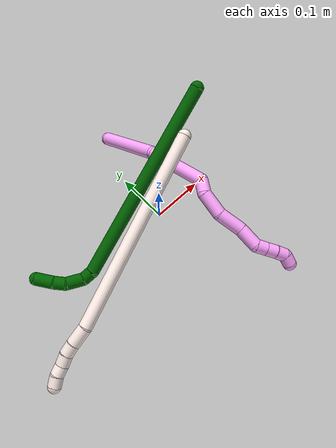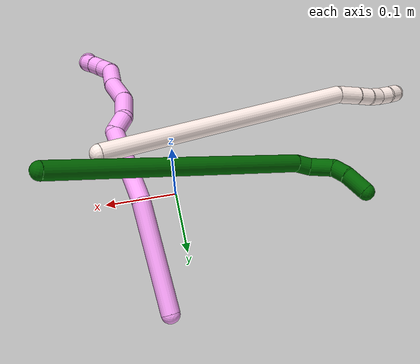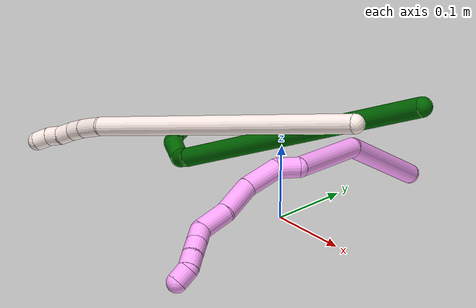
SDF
<sdf version="1.7">
 <world name="default">
  <model name="photoneo_s_sensor">
   <static>1</static>
   <pose>0 0 2 1.57079 1.57079 3.14159</pose>
   <link name="link">
    <inertial><mass>0.1</mass></inertial>
    <sensor name="sensor" type="depth">
     <update_rate>30</update_rate>
     <camera>
      <horizontal_fov>1.22</horizontal_fov>
      <image><width>1920</width><height>1200</height><format>B8G8R8</format></image>
      <clip><near>0.1</near><far>4</far></clip>
      <depth_camera><output>points</output></depth_camera>
     </camera>
     <plugin name="camera_plugin" filename="libgazebo_ros_depth_camera.so">
      <baseline>0.2</baseline>
      <alwaysOn>1</alwaysOn>
      <updateRate>0.0</updateRate>
      <cameraName>camera_ir</cameraName>
      <imageTopicName>/camera/color/image_raw</imageTopicName>
      <cameraInfoTopicName>/camera/color/camera_info</cameraInfoTopicName>
      <depthImageTopicName>/camera/depth/image_raw</depthImageTopicName>
      <depthImageCameraInfoTopicName>/camera/depth/camera_info</depthImageCameraInfoTopicName>
      <pointCloudTopicName>/camera/depth/points</pointCloudTopicName>
      <frameName>fr_optical</frameName>
      <pointCloudCutoff>0.1</pointCloudCutoff>
      <pointCloudCutoffMax>2.0</pointCloudCutoffMax>
      <distortionK1>0</distortionK1>
      <distortionK2>0</distortionK2>
      <distortionK3>0</distortionK3>
      <distortionT1>0</distortionT1>
      <distortionT2>0</distortionT2>
      <CxPrime>0</CxPrime>
      <Cx>0</Cx>
      <Cy>0</Cy>
      <focalLength>0</focalLength>
      <hackBaseline>0</hackBaseline>
     </plugin>
    </sensor>
   </link>
  </model>
  <model name="bin">
   <static>1</static>
   <link name="bottom">
    <collision name="collision-bottom">
     <pose>0 0 -0.01 0 -0 0</pose>
     <geometry><box><size>0.8 0.6 0.02</size></box></geometry>
     <surface>
      <friction><ode><mu>100</mu><mu2>100</mu2></ode></friction>
      <contact><collide_bitmask>65535</collide_bitmask></contact>
     </surface>
    </collision>
   </link>
   <link name="west_wall">
    <collision name="collision-west_wall">
     <pose>-0.41 0 0.1 0 -0 0</pose>
     <geometry><box><size>0.02 0.6 0.2</size></box></geometry>
     <surface>
      <friction><ode><mu>100</mu><mu2>100</mu2></ode></friction>
      <contact><collide_bitmask>65535</collide_bitmask></contact>
     </surface>
    </collision>
   </link>
   <link name="east_wall">
    <collision name="collision-east_wall">
     <pose>0.41 0 0.1 0 -0 0</pose>
     <geometry><box><size>0.02 0.6 0.2</size></box></geometry>
     <surface>
      <friction><ode><mu>100</mu><mu2>100</mu2></ode></friction>
      <contact><collide_bitmask>65535</collide_bitmask></contact>
     </surface>
    </collision>
   </link>
   <link name="south_wall">
    <collision name="collision-south_wall">
     <pose>0 -0.31 0.1 0 -0 0</pose>
     <geometry><box><size>0.8 0.02 0.2</size></box></geometry>
     <surface>
      <friction><ode><mu>100</mu><mu2>100</mu2></ode></friction>
      <contact><collide_bitmask>65535</collide_bitmask></contact>
     </surface>
    </collision>
   </link>
   <link name="north_wall">
    <collision name="collision-north_wall">
     <pose>0 0.31 0.1 0 -0 0</pose>
     <geometry><box><size>0.8 0.02 0.2</size></box></geometry>
     <surface>
      <friction><ode><mu>100</mu><mu2>100</mu2></ode></friction>
      <contact><collide_bitmask>65535</collide_bitmask></contact>
     </surface>
    </collision>
   </link>
  </model>
  <model name="4">
   <static>0</static>
   <link name="4">
    <collision name="collision-cylinder-e_1_1_4">
     <pose>0.019776 -0.057739 0.041502 0.947574 0.271262 0.139718</pose>
     <geometry><cylinder><radius>0.0125</radius><length>0.14761</length></cylinder></geometry>
     <surface>
      <friction><ode><mu>1.16</mu><mu2>1.16</mu2><slip1>0</slip1><slip2>0</slip2></ode></friction>
      <contact><ode><kp>1e+06</kp><kd>1</kd><max_vel>0</max_vel><min_depth>0.001</min_depth></ode></contact>
     </surface>
    </collision>
    <visual name="visual-cylinder-e_1_1_4">
     <pose>0.019776 -0.057739 0.041502 0.947574 0.271262 0.139718</pose>
     <geometry><cylinder><radius>0.0125</radius><length>0.14761</length></cylinder></geometry>
     <material><ambient>1 0.65098 0.996078 1</ambient></material>
    </visual>
    <collision name="collision-cylinder-e_2_4_5">
     <pose>0.06138 -0.139802 0.128484 0.491122 0.40035 0.10161</pose>
     <geometry><cylinder><radius>0.0125</radius><length>0.112012</length></cylinder></geometry>
     <surface>
      <friction><ode><mu>1.16</mu><mu2>1.16</mu2><slip1>0</slip1><slip2>0</slip2></ode></friction>
      <contact><ode><kp>1e+06</kp><kd>1</kd><max_vel>0</max_vel><min_depth>0.001</min_depth></ode></contact>
     </surface>
    </collision>
    <visual name="visual-cylinder-e_2_4_5">
     <pose>0.06138 -0.139802 0.128484 0.491122 0.40035 0.10161</pose>
     <geometry><cylinder><radius>0.0125</radius><length>0.112012</length></cylinder></geometry>
     <material><ambient>1 0.65098 0.996078 1</ambient></material>
    </visual>
    <collision name="collision-cylinder-e_3_5_6">
     <pose>0.095686 -0.168517 0.177829 0.849154 1.13249 0.559671</pose>
     <geometry><cylinder><radius>0.0125</radius><length>0.027562</length></cylinder></geometry>
     <surface>
      <friction><ode><mu>1.16</mu><mu2>1.16</mu2><slip1>0</slip1><slip2>0</slip2></ode></friction>
      <contact><ode><kp>1e+06</kp><kd>1</kd><max_vel>0</max_vel><min_depth>0.001</min_depth></ode></contact>
     </surface>
    </collision>
    <visual name="visual-cylinder-e_3_5_6">
     <pose>0.095686 -0.168517 0.177829 0.849154 1.13249 0.559671</pose>
     <geometry><cylinder><radius>0.0125</radius><length>0.027562</length></cylinder></geometry>
     <material><ambient>1 0.65098 0.996078 1</ambient></material>
    </visual>
    <collision name="collision-cylinder-e_4_6_7">
     <pose>0.123844 -0.174273 0.198019 0.083409 0.763488 0.0335</pose>
     <geometry><cylinder><radius>0.0125</radius><length>0.045355</length></cylinder></geometry>
     <surface>
      <friction><ode><mu>1.16</mu><mu2>1.16</mu2><slip1>0</slip1><slip2>0</slip2></ode></friction>
      <contact><ode><kp>1e+06</kp><kd>1</kd><max_vel>0</max_vel><min_depth>0.001</min_depth></ode></contact>
     </surface>
    </collision>
    <visual name="visual-cylinder-e_4_6_7">
     <pose>0.123844 -0.174273 0.198019 0.083409 0.763488 0.0335</pose>
     <geometry><cylinder><radius>0.0125</radius><length>0.045355</length></cylinder></geometry>
     <material><ambient>1 0.65098 0.996078 1</ambient></material>
    </visual>
    <collision name="collision-cylinder-e_5_7_8">
     <pose>0.149471 -0.175827 0.236004 0.008752 0.430479 0.001913</pose>
     <geometry><cylinder><radius>0.0125</radius><length>0.047671</length></cylinder></geometry>
     <surface>
      <friction><ode><mu>1.16</mu><mu2>1.16</mu2><slip1>0</slip1><slip2>0</slip2></ode></friction>
      <contact><ode><kp>1e+06</kp><kd>1</kd><max_vel>0</max_vel><min_depth>0.001</min_depth></ode></contact>
     </surface>
    </collision>
    <visual name="visual-cylinder-e_5_7_8">
     <pose>0.149471 -0.175827 0.236004 0.008752 0.430479 0.001913</pose>
     <geometry><cylinder><radius>0.0125</radius><length>0.047671</length></cylinder></geometry>
     <material><ambient>1 0.65098 0.996078 1</ambient></material>
    </visual>
    <collision name="collision-cylinder-e_6_8_9">
     <pose>0.171473 -0.177695 0.273211 0.10749 0.656772 0.036655</pose>
     <geometry><cylinder><radius>0.0125</radius><length>0.039488</length></cylinder></geometry>
     <surface>
      <friction><ode><mu>1.16</mu><mu2>1.16</mu2><slip1>0</slip1><slip2>0</slip2></ode></friction>
      <contact><ode><kp>1e+06</kp><kd>1</kd><max_vel>0</max_vel><min_depth>0.001</min_depth></ode></contact>
     </surface>
    </collision>
    <visual name="visual-cylinder-e_6_8_9">
     <pose>0.171473 -0.177695 0.273211 0.10749 0.656772 0.036655</pose>
     <geometry><cylinder><radius>0.0125</radius><length>0.039488</length></cylinder></geometry>
     <material><ambient>1 0.65098 0.996078 1</ambient></material>
    </visual>
    <collision name="collision-cylinder-e_7_9_10">
     <pose>0.18458 -0.17855 0.298809 -0.08163 0.103945 -0.004249</pose>
     <geometry><cylinder><radius>0.0125</radius><length>0.020281</length></cylinder></geometry>
     <surface>
      <friction><ode><mu>1.16</mu><mu2>1.16</mu2><slip1>0</slip1><slip2>0</slip2></ode></friction>
      <contact><ode><kp>1e+06</kp><kd>1</kd><max_vel>0</max_vel><min_depth>0.001</min_depth></ode></contact>
     </surface>
    </collision>
    <visual name="visual-cylinder-e_7_9_10">
     <pose>0.18458 -0.17855 0.298809 -0.08163 0.103945 -0.004249</pose>
     <geometry><cylinder><radius>0.0125</radius><length>0.020281</length></cylinder></geometry>
     <material><ambient>1 0.65098 0.996078 1</ambient></material>
    </visual>
    <collision name="collision-cylinder-e_8_10_11">
     <pose>0.186554 -0.177045 0.318805 -0.068558 0.092222 -0.003165</pose>
     <geometry><cylinder><radius>0.0125</radius><length>0.020019</length></cylinder></geometry>
     <surface>
      <friction><ode><mu>1.16</mu><mu2>1.16</mu2><slip1>0</slip1><slip2>0</slip2></ode></friction>
      <contact><ode><kp>1e+06</kp><kd>1</kd><max_vel>0</max_vel><min_depth>0.001</min_depth></ode></contact>
     </surface>
    </collision>
    <visual name="visual-cylinder-e_8_10_11">
     <pose>0.186554 -0.177045 0.318805 -0.068558 0.092222 -0.003165</pose>
     <geometry><cylinder><radius>0.0125</radius><length>0.020019</length></cylinder></geometry>
     <material><ambient>1 0.65098 0.996078 1</ambient></material>
    </visual>
    <collision name="collision-cylinder-e_9_11_12">
     <pose>0.188797 -0.174618 0.338507 -0.176873 0.132466 -0.011763</pose>
     <geometry><cylinder><radius>0.0125</radius><length>0.020001</length></cylinder></geometry>
     <surface>
      <friction><ode><mu>1.16</mu><mu2>1.16</mu2><slip1>0</slip1><slip2>0</slip2></ode></friction>
      <contact><ode><kp>1e+06</kp><kd>1</kd><max_vel>0</max_vel><min_depth>0.001</min_depth></ode></contact>
     </surface>
    </collision>
    <visual name="visual-cylinder-e_9_11_12">
     <pose>0.188797 -0.174618 0.338507 -0.176873 0.132466 -0.011763</pose>
     <geometry><cylinder><radius>0.0125</radius><length>0.020001</length></cylinder></geometry>
     <material><ambient>1 0.65098 0.996078 1</ambient></material>
    </visual>
    <collision name="collision-cylinder-e_10_12_2">
     <pose>0.196723 -0.169783 0.355108 -0.42418 0.721508 -0.162115</pose>
     <geometry><cylinder><radius>0.0125</radius><length>0.02</length></cylinder></geometry>
     <surface>
      <friction><ode><mu>1.16</mu><mu2>1.16</mu2><slip1>0</slip1><slip2>0</slip2></ode></friction>
      <contact><ode><kp>1e+06</kp><kd>1</kd><max_vel>0</max_vel><min_depth>0.001</min_depth></ode></contact>
     </surface>
    </collision>
    <visual name="visual-cylinder-e_10_12_2">
     <pose>0.196723 -0.169783 0.355108 -0.42418 0.721508 -0.162115</pose>
     <geometry><cylinder><radius>0.0125</radius><length>0.02</length></cylinder></geometry>
     <material><ambient>1 0.65098 0.996078 1</ambient></material>
    </visual>
    <collision name="collision-sphere-2">
     <pose>0.203328 -0.166693 0.361951 0 -0 0</pose>
     <geometry><sphere><radius>0.0125</radius></sphere></geometry>
     <surface>
      <friction><ode><mu>1.16</mu><mu2>1.16</mu2><slip1>0</slip1><slip2>0</slip2></ode></friction>
      <contact><ode><kp>1e+06</kp><kd>1</kd><max_vel>0</max_vel><min_depth>0.001</min_depth></ode></contact>
     </surface>
    </collision>
    <visual name="visual-sphere-2">
     <pose>0.203328 -0.166693 0.361951 0 -0 0</pose>
     <geometry><sphere><radius>0.0125</radius></sphere></geometry>
     <material><ambient>1 0.65098 0.996078 1</ambient></material>
    </visual>
    <collision name="collision-sphere-12">
     <pose>0.190118 -0.172873 0.348265 0 -0 0</pose>
     <geometry><sphere><radius>0.0125</radius></sphere></geometry>
     <surface>
      <friction><ode><mu>1.16</mu><mu2>1.16</mu2><slip1>0</slip1><slip2>0</slip2></ode></friction>
      <contact><ode><kp>1e+06</kp><kd>1</kd><max_vel>0</max_vel><min_depth>0.001</min_depth></ode></contact>
     </surface>
    </collision>
    <visual name="visual-sphere-12">
     <pose>0.190118 -0.172873 0.348265 0 -0 0</pose>
     <geometry><sphere><radius>0.0125</radius></sphere></geometry>
     <material><ambient>1 0.65098 0.996078 1</ambient></material>
    </visual>
    <collision name="collision-sphere-11">
     <pose>0.187476 -0.176362 0.328749 0 -0 0</pose>
     <geometry><sphere><radius>0.0125</radius></sphere></geometry>
     <surface>
      <friction><ode><mu>1.16</mu><mu2>1.16</mu2><slip1>0</slip1><slip2>0</slip2></ode></friction>
      <contact><ode><kp>1e+06</kp><kd>1</kd><max_vel>0</max_vel><min_depth>0.001</min_depth></ode></contact>
     </surface>
    </collision>
    <visual name="visual-sphere-11">
     <pose>0.187476 -0.176362 0.328749 0 -0 0</pose>
     <geometry><sphere><radius>0.0125</radius></sphere></geometry>
     <material><ambient>1 0.65098 0.996078 1</ambient></material>
    </visual>
    <collision name="collision-sphere-10">
     <pose>0.185632 -0.177727 0.308861 0 -0 0</pose>
     <geometry><sphere><radius>0.0125</radius></sphere></geometry>
     <surface>
      <friction><ode><mu>1.16</mu><mu2>1.16</mu2><slip1>0</slip1><slip2>0</slip2></ode></friction>
      <contact><ode><kp>1e+06</kp><kd>1</kd><max_vel>0</max_vel><min_depth>0.001</min_depth></ode></contact>
     </surface>
    </collision>
    <visual name="visual-sphere-10">
     <pose>0.185632 -0.177727 0.308861 0 -0 0</pose>
     <geometry><sphere><radius>0.0125</radius></sphere></geometry>
     <material><ambient>1 0.65098 0.996078 1</ambient></material>
    </visual>
    <collision name="collision-sphere-9">
     <pose>0.183528 -0.179372 0.288758 0 -0 0</pose>
     <geometry><sphere><radius>0.0125</radius></sphere></geometry>
     <surface>
      <friction><ode><mu>1.16</mu><mu2>1.16</mu2><slip1>0</slip1><slip2>0</slip2></ode></friction>
      <contact><ode><kp>1e+06</kp><kd>1</kd><max_vel>0</max_vel><min_depth>0.001</min_depth></ode></contact>
     </surface>
    </collision>
    <visual name="visual-sphere-9">
     <pose>0.183528 -0.179372 0.288758 0 -0 0</pose>
     <geometry><sphere><radius>0.0125</radius></sphere></geometry>
     <material><ambient>1 0.65098 0.996078 1</ambient></material>
    </visual>
    <collision name="collision-sphere-4">
     <pose>0.039552 -0.115477 0.083003 0 -0 0</pose>
     <geometry><sphere><radius>0.0125</radius></sphere></geometry>
     <surface>
      <friction><ode><mu>1.16</mu><mu2>1.16</mu2><slip1>0</slip1><slip2>0</slip2></ode></friction>
      <contact><ode><kp>1e+06</kp><kd>1</kd><max_vel>0</max_vel><min_depth>0.001</min_depth></ode></contact>
     </surface>
    </collision>
    <visual name="visual-sphere-4">
     <pose>0.039552 -0.115477 0.083003 0 -0 0</pose>
     <geometry><sphere><radius>0.0125</radius></sphere></geometry>
     <material><ambient>1 0.65098 0.996078 1</ambient></material>
    </visual>
    <collision name="collision-sphere-1">
     <geometry><sphere><radius>0.0125</radius></sphere></geometry>
     <surface>
      <friction><ode><mu>1.16</mu><mu2>1.16</mu2><slip1>0</slip1><slip2>0</slip2></ode></friction>
      <contact><ode><kp>1e+06</kp><kd>1</kd><max_vel>0</max_vel><min_depth>0.001</min_depth></ode></contact>
     </surface>
    </collision>
    <visual name="visual-sphere-1">
     <geometry><sphere><radius>0.0125</radius></sphere></geometry>
     <material><ambient>1 0.65098 0.996078 1</ambient></material>
    </visual>
    <collision name="collision-sphere-8">
     <pose>0.159418 -0.176017 0.257664 0 -0 0</pose>
     <geometry><sphere><radius>0.0125</radius></sphere></geometry>
     <surface>
      <friction><ode><mu>1.16</mu><mu2>1.16</mu2><slip1>0</slip1><slip2>0</slip2></ode></friction>
      <contact><ode><kp>1e+06</kp><kd>1</kd><max_vel>0</max_vel><min_depth>0.001</min_depth></ode></contact>
     </surface>
    </collision>
    <visual name="visual-sphere-8">
     <pose>0.159418 -0.176017 0.257664 0 -0 0</pose>
     <geometry><sphere><radius>0.0125</radius></sphere></geometry>
     <material><ambient>1 0.65098 0.996078 1</ambient></material>
    </visual>
    <collision name="collision-sphere-5">
     <pose>0.083207 -0.164126 0.173965 0 -0 0</pose>
     <geometry><sphere><radius>0.0125</radius></sphere></geometry>
     <surface>
      <friction><ode><mu>1.16</mu><mu2>1.16</mu2><slip1>0</slip1><slip2>0</slip2></ode></friction>
      <contact><ode><kp>1e+06</kp><kd>1</kd><max_vel>0</max_vel><min_depth>0.001</min_depth></ode></contact>
     </surface>
    </collision>
    <visual name="visual-sphere-5">
     <pose>0.083207 -0.164126 0.173965 0 -0 0</pose>
     <geometry><sphere><radius>0.0125</radius></sphere></geometry>
     <material><ambient>1 0.65098 0.996078 1</ambient></material>
    </visual>
    <collision name="collision-sphere-6">
     <pose>0.108164 -0.172908 0.181693 0 -0 0</pose>
     <geometry><sphere><radius>0.0125</radius></sphere></geometry>
     <surface>
      <friction><ode><mu>1.16</mu><mu2>1.16</mu2><slip1>0</slip1><slip2>0</slip2></ode></friction>
      <contact><ode><kp>1e+06</kp><kd>1</kd><max_vel>0</max_vel><min_depth>0.001</min_depth></ode></contact>
     </surface>
    </collision>
    <visual name="visual-sphere-6">
     <pose>0.108164 -0.172908 0.181693 0 -0 0</pose>
     <geometry><sphere><radius>0.0125</radius></sphere></geometry>
     <material><ambient>1 0.65098 0.996078 1</ambient></material>
    </visual>
    <collision name="collision-sphere-7">
     <pose>0.139525 -0.175638 0.214344 0 -0 0</pose>
     <geometry><sphere><radius>0.0125</radius></sphere></geometry>
     <surface>
      <friction><ode><mu>1.16</mu><mu2>1.16</mu2><slip1>0</slip1><slip2>0</slip2></ode></friction>
      <contact><ode><kp>1e+06</kp><kd>1</kd><max_vel>0</max_vel><min_depth>0.001</min_depth></ode></contact>
     </surface>
    </collision>
    <visual name="visual-sphere-7">
     <pose>0.139525 -0.175638 0.214344 0 -0 0</pose>
     <geometry><sphere><radius>0.0125</radius></sphere></geometry>
     <material><ambient>1 0.65098 0.996078 1</ambient></material>
    </visual>
    <inertial>
     <pose>0.094268 -0.132367 0.165509 0 -0 0</pose>
     <mass>0.5</mass>
     <inertia>
      <ixx>0.000466</ixx>
      <ixy>0</ixy>
      <ixz>0</ixz>
      <iyy>0.000347</iyy>
      <iyz>0</iyz>
      <izz>0.000157</izz>
     </inertia>
    </inertial>
   </link>
   <pose>0.037055 0.194298 0.011483 -1.789 0.251721 -2.50101</pose>
  </model>
  <model name="6">
   <static>0</static>
   <link name="6">
    <collision name="collision-cylinder-e_1_1_4">
     <pose>-0.009808 -0.048073 -0.185598 2.88815 -0.051114 -0.396017</pose>
     <geometry><cylinder><radius>0.0125</radius><length>0.383948</length></cylinder></geometry>
     <surface>
      <friction><ode><mu>1.16</mu><mu2>1.16</mu2><slip1>0</slip1><slip2>0</slip2></ode></friction>
      <contact><ode><kp>1e+06</kp><kd>1</kd><max_vel>0</max_vel><min_depth>0.001</min_depth></ode></contact>
     </surface>
    </collision>
    <visual name="visual-cylinder-e_1_1_4">
     <pose>-0.009808 -0.048073 -0.185598 2.88815 -0.051114 -0.396017</pose>
     <geometry><cylinder><radius>0.0125</radius><length>0.383948</length></cylinder></geometry>
     <material><ambient>0 0.392157 0.003922 1</ambient></material>
    </visual>
    <collision name="collision-cylinder-e_2_4_5">
     <pose>-0.021419 -0.095301 -0.382319 -3.0657 -0.160209 2.25812</pose>
     <geometry><cylinder><radius>0.0125</radius><length>0.022598</length></cylinder></geometry>
     <surface>
      <friction><ode><mu>1.16</mu><mu2>1.16</mu2><slip1>0</slip1><slip2>0</slip2></ode></friction>
      <contact><ode><kp>1e+06</kp><kd>1</kd><max_vel>0</max_vel><min_depth>0.001</min_depth></ode></contact>
     </surface>
    </collision>
    <visual name="visual-cylinder-e_2_4_5">
     <pose>-0.021419 -0.095301 -0.382319 -3.0657 -0.160209 2.25812</pose>
     <geometry><cylinder><radius>0.0125</radius><length>0.022598</length></cylinder></geometry>
     <material><ambient>0 0.392157 0.003922 1</ambient></material>
    </visual>
    <collision name="collision-cylinder-e_3_5_6">
     <pose>-0.035705 -0.090923 -0.404914 -2.84294 -0.804978 2.46222</pose>
     <geometry><cylinder><radius>0.0125</radius><length>0.034637</length></cylinder></geometry>
     <surface>
      <friction><ode><mu>1.16</mu><mu2>1.16</mu2><slip1>0</slip1><slip2>0</slip2></ode></friction>
      <contact><ode><kp>1e+06</kp><kd>1</kd><max_vel>0</max_vel><min_depth>0.001</min_depth></ode></contact>
     </surface>
    </collision>
    <visual name="visual-cylinder-e_3_5_6">
     <pose>-0.035705 -0.090923 -0.404914 -2.84294 -0.804978 2.46222</pose>
     <geometry><cylinder><radius>0.0125</radius><length>0.034637</length></cylinder></geometry>
     <material><ambient>0 0.392157 0.003922 1</ambient></material>
    </visual>
    <collision name="collision-cylinder-e_4_6_7">
     <pose>-0.05425 -0.080584 -0.422531 -2.30511 -0.584135 1.18951</pose>
     <geometry><cylinder><radius>0.0125</radius><length>0.021985</length></cylinder></geometry>
     <surface>
      <friction><ode><mu>1.16</mu><mu2>1.16</mu2><slip1>0</slip1><slip2>0</slip2></ode></friction>
      <contact><ode><kp>1e+06</kp><kd>1</kd><max_vel>0</max_vel><min_depth>0.001</min_depth></ode></contact>
     </surface>
    </collision>
    <visual name="visual-cylinder-e_4_6_7">
     <pose>-0.05425 -0.080584 -0.422531 -2.30511 -0.584135 1.18951</pose>
     <geometry><cylinder><radius>0.0125</radius><length>0.021985</length></cylinder></geometry>
     <material><ambient>0 0.392157 0.003922 1</ambient></material>
    </visual>
    <collision name="collision-cylinder-e_5_7_2">
     <pose>-0.067359 -0.060003 -0.438664 -2.19819 -0.392611 0.743451</pose>
     <geometry><cylinder><radius>0.0125</radius><length>0.036832</length></cylinder></geometry>
     <surface>
      <friction><ode><mu>1.16</mu><mu2>1.16</mu2><slip1>0</slip1><slip2>0</slip2></ode></friction>
      <contact><ode><kp>1e+06</kp><kd>1</kd><max_vel>0</max_vel><min_depth>0.001</min_depth></ode></contact>
     </surface>
    </collision>
    <visual name="visual-cylinder-e_5_7_2">
     <pose>-0.067359 -0.060003 -0.438664 -2.19819 -0.392611 0.743451</pose>
     <geometry><cylinder><radius>0.0125</radius><length>0.036832</length></cylinder></geometry>
     <material><ambient>0 0.392157 0.003922 1</ambient></material>
    </visual>
    <collision name="collision-sphere-2">
     <pose>-0.074405 -0.046229 -0.448652 0 -0 0</pose>
     <geometry><sphere><radius>0.0125</radius></sphere></geometry>
     <surface>
      <friction><ode><mu>1.16</mu><mu2>1.16</mu2><slip1>0</slip1><slip2>0</slip2></ode></friction>
      <contact><ode><kp>1e+06</kp><kd>1</kd><max_vel>0</max_vel><min_depth>0.001</min_depth></ode></contact>
     </surface>
    </collision>
    <visual name="visual-sphere-2">
     <pose>-0.074405 -0.046229 -0.448652 0 -0 0</pose>
     <geometry><sphere><radius>0.0125</radius></sphere></geometry>
     <material><ambient>0 0.392157 0.003922 1</ambient></material>
    </visual>
    <collision name="collision-sphere-7">
     <pose>-0.060313 -0.073778 -0.428675 0 -0 0</pose>
     <geometry><sphere><radius>0.0125</radius></sphere></geometry>
     <surface>
      <friction><ode><mu>1.16</mu><mu2>1.16</mu2><slip1>0</slip1><slip2>0</slip2></ode></friction>
      <contact><ode><kp>1e+06</kp><kd>1</kd><max_vel>0</max_vel><min_depth>0.001</min_depth></ode></contact>
     </surface>
    </collision>
    <visual name="visual-sphere-7">
     <pose>-0.060313 -0.073778 -0.428675 0 -0 0</pose>
     <geometry><sphere><radius>0.0125</radius></sphere></geometry>
     <material><ambient>0 0.392157 0.003922 1</ambient></material>
    </visual>
    <collision name="collision-sphere-6">
     <pose>-0.048188 -0.087391 -0.416386 0 -0 0</pose>
     <geometry><sphere><radius>0.0125</radius></sphere></geometry>
     <surface>
      <friction><ode><mu>1.16</mu><mu2>1.16</mu2><slip1>0</slip1><slip2>0</slip2></ode></friction>
      <contact><ode><kp>1e+06</kp><kd>1</kd><max_vel>0</max_vel><min_depth>0.001</min_depth></ode></contact>
     </surface>
    </collision>
    <visual name="visual-sphere-6">
     <pose>-0.048188 -0.087391 -0.416386 0 -0 0</pose>
     <geometry><sphere><radius>0.0125</radius></sphere></geometry>
     <material><ambient>0 0.392157 0.003922 1</ambient></material>
    </visual>
    <collision name="collision-sphere-5">
     <pose>-0.023222 -0.094455 -0.393441 0 -0 0</pose>
     <geometry><sphere><radius>0.0125</radius></sphere></geometry>
     <surface>
      <friction><ode><mu>1.16</mu><mu2>1.16</mu2><slip1>0</slip1><slip2>0</slip2></ode></friction>
      <contact><ode><kp>1e+06</kp><kd>1</kd><max_vel>0</max_vel><min_depth>0.001</min_depth></ode></contact>
     </surface>
    </collision>
    <visual name="visual-sphere-5">
     <pose>-0.023222 -0.094455 -0.393441 0 -0 0</pose>
     <geometry><sphere><radius>0.0125</radius></sphere></geometry>
     <material><ambient>0 0.392157 0.003922 1</ambient></material>
    </visual>
    <collision name="collision-sphere-1">
     <geometry><sphere><radius>0.0125</radius></sphere></geometry>
     <surface>
      <friction><ode><mu>1.16</mu><mu2>1.16</mu2><slip1>0</slip1><slip2>0</slip2></ode></friction>
      <contact><ode><kp>1e+06</kp><kd>1</kd><max_vel>0</max_vel><min_depth>0.001</min_depth></ode></contact>
     </surface>
    </collision>
    <visual name="visual-sphere-1">
     <geometry><sphere><radius>0.0125</radius></sphere></geometry>
     <material><ambient>0 0.392157 0.003922 1</ambient></material>
    </visual>
    <collision name="collision-sphere-4">
     <pose>-0.019617 -0.096147 -0.371196 0 -0 0</pose>
     <geometry><sphere><radius>0.0125</radius></sphere></geometry>
     <surface>
      <friction><ode><mu>1.16</mu><mu2>1.16</mu2><slip1>0</slip1><slip2>0</slip2></ode></friction>
      <contact><ode><kp>1e+06</kp><kd>1</kd><max_vel>0</max_vel><min_depth>0.001</min_depth></ode></contact>
     </surface>
    </collision>
    <visual name="visual-sphere-4">
     <pose>-0.019617 -0.096147 -0.371196 0 -0 0</pose>
     <geometry><sphere><radius>0.0125</radius></sphere></geometry>
     <material><ambient>0 0.392157 0.003922 1</ambient></material>
    </visual>
    <inertial>
     <pose>-0.018321 -0.055484 -0.238742 0 -0 0</pose>
     <mass>0.5</mass>
     <inertia>
      <ixx>0.00254</ixx>
      <ixy>0</ixy>
      <ixz>0</ixz>
      <iyy>-0.006016</iyy>
      <iyz>0</iyz>
      <izz>0.001392</izz>
     </inertia>
    </inertial>
   </link>
   <pose>0.162116 0.073656 0.186852 -0.346837 0.957946 -0.448293</pose>
  </model>
  <model name="11">
   <static>0</static>
   <link name="11">
    <collision name="collision-cylinder-e_1_1_4">
     <pose>-0.174319 -0.04859 -0.05595 2.42648 -1.16884 -2.11332</pose>
     <geometry><cylinder><radius>0.0125</radius><length>0.378832</length></cylinder></geometry>
     <surface>
      <friction><ode><mu>1.16</mu><mu2>1.16</mu2><slip1>0</slip1><slip2>0</slip2></ode></friction>
      <contact><ode><kp>1e+06</kp><kd>1</kd><max_vel>0</max_vel><min_depth>0.001</min_depth></ode></contact>
     </surface>
    </collision>
    <visual name="visual-cylinder-e_1_1_4">
     <pose>-0.174319 -0.04859 -0.05595 2.42648 -1.16884 -2.11332</pose>
     <geometry><cylinder><radius>0.0125</radius><length>0.378832</length></cylinder></geometry>
     <material><ambient>1 0.933333 0.909804 1</ambient></material>
    </visual>
    <collision name="collision-cylinder-e_2_4_5">
     <pose>-0.366259 -0.09824 -0.114744 2.78511 -1.40023 -2.72026</pose>
     <geometry><cylinder><radius>0.0125</radius><length>0.035763</length></cylinder></geometry>
     <surface>
      <friction><ode><mu>1.16</mu><mu2>1.16</mu2><slip1>0</slip1><slip2>0</slip2></ode></friction>
      <contact><ode><kp>1e+06</kp><kd>1</kd><max_vel>0</max_vel><min_depth>0.001</min_depth></ode></contact>
     </surface>
    </collision>
    <visual name="visual-cylinder-e_2_4_5">
     <pose>-0.366259 -0.09824 -0.114744 2.78511 -1.40023 -2.72026</pose>
     <geometry><cylinder><radius>0.0125</radius><length>0.035763</length></cylinder></geometry>
     <material><ambient>1 0.933333 0.909804 1</ambient></material>
    </visual>
    <collision name="collision-cylinder-e_3_5_6">
     <pose>-0.394969 -0.099399 -0.120104 3.10184 -1.34753 -3.09181</pose>
     <geometry><cylinder><radius>0.0125</radius><length>0.02274</length></cylinder></geometry>
     <surface>
      <friction><ode><mu>1.16</mu><mu2>1.16</mu2><slip1>0</slip1><slip2>0</slip2></ode></friction>
      <contact><ode><kp>1e+06</kp><kd>1</kd><max_vel>0</max_vel><min_depth>0.001</min_depth></ode></contact>
     </surface>
    </collision>
    <visual name="visual-cylinder-e_3_5_6">
     <pose>-0.394969 -0.099399 -0.120104 3.10184 -1.34753 -3.09181</pose>
     <geometry><cylinder><radius>0.0125</radius><length>0.02274</length></cylinder></geometry>
     <material><ambient>1 0.933333 0.909804 1</ambient></material>
    </visual>
    <collision name="collision-cylinder-e_4_6_7">
     <pose>-0.415917 -0.099736 -0.126936 3.08688 -1.15758 -3.05789</pose>
     <geometry><cylinder><radius>0.0125</radius><length>0.021534</length></cylinder></geometry>
     <surface>
      <friction><ode><mu>1.16</mu><mu2>1.16</mu2><slip1>0</slip1><slip2>0</slip2></ode></friction>
      <contact><ode><kp>1e+06</kp><kd>1</kd><max_vel>0</max_vel><min_depth>0.001</min_depth></ode></contact>
     </surface>
    </collision>
    <visual name="visual-cylinder-e_4_6_7">
     <pose>-0.415917 -0.099736 -0.126936 3.08688 -1.15758 -3.05789</pose>
     <geometry><cylinder><radius>0.0125</radius><length>0.021534</length></cylinder></geometry>
     <material><ambient>1 0.933333 0.909804 1</ambient></material>
    </visual>
    <collision name="collision-cylinder-e_5_7_8">
     <pose>-0.435221 -0.101744 -0.134432 2.63314 -1.20298 -2.41774</pose>
     <geometry><cylinder><radius>0.0125</radius><length>0.020239</length></cylinder></geometry>
     <surface>
      <friction><ode><mu>1.16</mu><mu2>1.16</mu2><slip1>0</slip1><slip2>0</slip2></ode></friction>
      <contact><ode><kp>1e+06</kp><kd>1</kd><max_vel>0</max_vel><min_depth>0.001</min_depth></ode></contact>
     </surface>
    </collision>
    <visual name="visual-cylinder-e_5_7_8">
     <pose>-0.435221 -0.101744 -0.134432 2.63314 -1.20298 -2.41774</pose>
     <geometry><cylinder><radius>0.0125</radius><length>0.020239</length></cylinder></geometry>
     <material><ambient>1 0.933333 0.909804 1</ambient></material>
    </visual>
    <collision name="collision-cylinder-e_6_8_2">
     <pose>-0.453518 -0.104186 -0.143112 3.02017 -1.01152 -2.92295</pose>
     <geometry><cylinder><radius>0.0125</radius><length>0.020893</length></cylinder></geometry>
     <surface>
      <friction><ode><mu>1.16</mu><mu2>1.16</mu2><slip1>0</slip1><slip2>0</slip2></ode></friction>
      <contact><ode><kp>1e+06</kp><kd>1</kd><max_vel>0</max_vel><min_depth>0.001</min_depth></ode></contact>
     </surface>
    </collision>
    <visual name="visual-cylinder-e_6_8_2">
     <pose>-0.453518 -0.104186 -0.143112 3.02017 -1.01152 -2.92295</pose>
     <geometry><cylinder><radius>0.0125</radius><length>0.020893</length></cylinder></geometry>
     <material><ambient>1 0.933333 0.909804 1</ambient></material>
    </visual>
    <collision name="collision-sphere-2">
     <pose>-0.462373 -0.104858 -0.148614 0 -0 0</pose>
     <geometry><sphere><radius>0.0125</radius></sphere></geometry>
     <surface>
      <friction><ode><mu>1.16</mu><mu2>1.16</mu2><slip1>0</slip1><slip2>0</slip2></ode></friction>
      <contact><ode><kp>1e+06</kp><kd>1</kd><max_vel>0</max_vel><min_depth>0.001</min_depth></ode></contact>
     </surface>
    </collision>
    <visual name="visual-sphere-2">
     <pose>-0.462373 -0.104858 -0.148614 0 -0 0</pose>
     <geometry><sphere><radius>0.0125</radius></sphere></geometry>
     <material><ambient>1 0.933333 0.909804 1</ambient></material>
    </visual>
    <collision name="collision-sphere-4">
     <pose>-0.348637 -0.097181 -0.111899 0 -0 0</pose>
     <geometry><sphere><radius>0.0125</radius></sphere></geometry>
     <surface>
      <friction><ode><mu>1.16</mu><mu2>1.16</mu2><slip1>0</slip1><slip2>0</slip2></ode></friction>
      <contact><ode><kp>1e+06</kp><kd>1</kd><max_vel>0</max_vel><min_depth>0.001</min_depth></ode></contact>
     </surface>
    </collision>
    <visual name="visual-sphere-4">
     <pose>-0.348637 -0.097181 -0.111899 0 -0 0</pose>
     <geometry><sphere><radius>0.0125</radius></sphere></geometry>
     <material><ambient>1 0.933333 0.909804 1</ambient></material>
    </visual>
    <collision name="collision-sphere-1">
     <geometry><sphere><radius>0.0125</radius></sphere></geometry>
     <surface>
      <friction><ode><mu>1.16</mu><mu2>1.16</mu2><slip1>0</slip1><slip2>0</slip2></ode></friction>
      <contact><ode><kp>1e+06</kp><kd>1</kd><max_vel>0</max_vel><min_depth>0.001</min_depth></ode></contact>
     </surface>
    </collision>
    <visual name="visual-sphere-1">
     <geometry><sphere><radius>0.0125</radius></sphere></geometry>
     <material><ambient>1 0.933333 0.909804 1</ambient></material>
    </visual>
    <collision name="collision-sphere-8">
     <pose>-0.444663 -0.103515 -0.13761 0 -0 0</pose>
     <geometry><sphere><radius>0.0125</radius></sphere></geometry>
     <surface>
      <friction><ode><mu>1.16</mu><mu2>1.16</mu2><slip1>0</slip1><slip2>0</slip2></ode></friction>
      <contact><ode><kp>1e+06</kp><kd>1</kd><max_vel>0</max_vel><min_depth>0.001</min_depth></ode></contact>
     </surface>
    </collision>
    <visual name="visual-sphere-8">
     <pose>-0.444663 -0.103515 -0.13761 0 -0 0</pose>
     <geometry><sphere><radius>0.0125</radius></sphere></geometry>
     <material><ambient>1 0.933333 0.909804 1</ambient></material>
    </visual>
    <collision name="collision-sphere-5">
     <pose>-0.383881 -0.099299 -0.117588 0 -0 0</pose>
     <geometry><sphere><radius>0.0125</radius></sphere></geometry>
     <surface>
      <friction><ode><mu>1.16</mu><mu2>1.16</mu2><slip1>0</slip1><slip2>0</slip2></ode></friction>
      <contact><ode><kp>1e+06</kp><kd>1</kd><max_vel>0</max_vel><min_depth>0.001</min_depth></ode></contact>
     </surface>
    </collision>
    <visual name="visual-sphere-5">
     <pose>-0.383881 -0.099299 -0.117588 0 -0 0</pose>
     <geometry><sphere><radius>0.0125</radius></sphere></geometry>
     <material><ambient>1 0.933333 0.909804 1</ambient></material>
    </visual>
    <collision name="collision-sphere-6">
     <pose>-0.406056 -0.099499 -0.122619 0 -0 0</pose>
     <geometry><sphere><radius>0.0125</radius></sphere></geometry>
     <surface>
      <friction><ode><mu>1.16</mu><mu2>1.16</mu2><slip1>0</slip1><slip2>0</slip2></ode></friction>
      <contact><ode><kp>1e+06</kp><kd>1</kd><max_vel>0</max_vel><min_depth>0.001</min_depth></ode></contact>
     </surface>
    </collision>
    <visual name="visual-sphere-6">
     <pose>-0.406056 -0.099499 -0.122619 0 -0 0</pose>
     <geometry><sphere><radius>0.0125</radius></sphere></geometry>
     <material><ambient>1 0.933333 0.909804 1</ambient></material>
    </visual>
    <collision name="collision-sphere-7">
     <pose>-0.425778 -0.099972 -0.131253 0 -0 0</pose>
     <geometry><sphere><radius>0.0125</radius></sphere></geometry>
     <surface>
      <friction><ode><mu>1.16</mu><mu2>1.16</mu2><slip1>0</slip1><slip2>0</slip2></ode></friction>
      <contact><ode><kp>1e+06</kp><kd>1</kd><max_vel>0</max_vel><min_depth>0.001</min_depth></ode></contact>
     </surface>
    </collision>
    <visual name="visual-sphere-7">
     <pose>-0.425778 -0.099972 -0.131253 0 -0 0</pose>
     <geometry><sphere><radius>0.0125</radius></sphere></geometry>
     <material><ambient>1 0.933333 0.909804 1</ambient></material>
    </visual>
    <inertial>
     <pose>-0.230715 -0.06113 -0.072949 0 -0 0</pose>
     <mass>0.5</mass>
     <inertia>
      <ixx>-0.002481</ixx>
      <ixy>0</ixy>
      <ixz>0</ixz>
      <iyy>0.002601</iyy>
      <iyz>0</iyz>
      <izz>0.005349</izz>
     </inertia>
    </inertial>
   </link>
   <pose>0.092708 0.032753 0.153065 -1.15874 -0.387483 -0.067702</pose>
  </model>
 </world>
</sdf>
